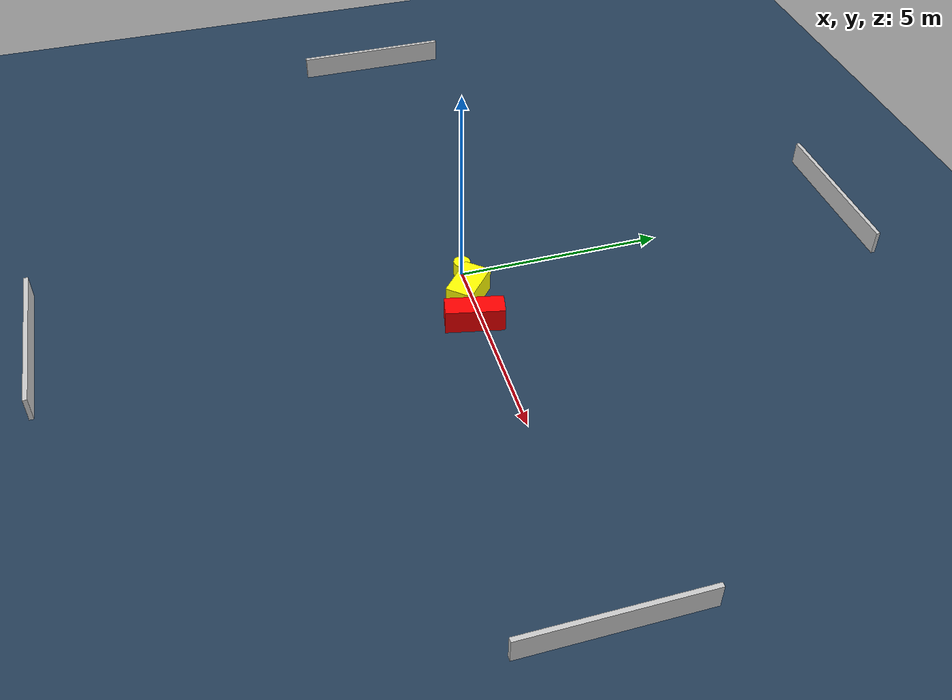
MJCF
<?xml version="1.0" ?>
<mujoco model="generated_environment">
  <option timestep="0.01" integrator="RK4" cone="elliptic"/>
  <default>
    <geom density="1"/>
  </default>
  <asset>
    <texture builtin="gradient" height="3072" name="skybox" rgb1="0.3 0.5 0.7" rgb2="0 0 0" type="skybox" width="512"/>
    <texture builtin="checker" height="300" name="groundplane" rgb1="0.2 0.3 0.4" rgb2="0.1 0.2 0.3" type="2d" width="300"/>
    <material name="groundplane" reflectance="0.2" texrepeat="5 5" texture="groundplane"/>
  </asset>
  <worldbody>
    <light dir="0 0 -1" directional="true" pos="0 0 1.5"/>
    <geom condim="3" friction="0.5 0.005 0.001" material="groundplane" name="floor" pos="0 0 0" size="0 0 0.05" type="plane"/>
    <body name="walls">
      <geom name="wall_1" condim="4" pos="-10.0 0.0 0.3" rgba="0.800000011920929 0.800000011920929 0.800000011920929 1.0" size="0.05 2.0 0.3" type="box"/>
      <geom name="wall_2" condim="4" pos="10.0 0.0 0.3" rgba="0.800000011920929 0.800000011920929 0.800000011920929 1.0" size="0.05 2.0 0.3" type="box"/>
      <geom name="wall_3" condim="4" pos="0.0 -10.0 0.3" rgba="0.800000011920929 0.800000011920929 0.800000011920929 1.0" size="2.0 0.05 0.3" type="box"/>
      <geom name="wall_4" condim="4" pos="0.0 10.0 0.3" rgba="0.800000011920929 0.800000011920929 0.800000011920929 1.0" size="2.0 0.05 0.3" type="box"/>
    </body>
    <body name="robot">
      <joint name="joint_x" type="slide" pos="0 0 0" axis="1 0 0"/>
      <joint name="joint_y" type="slide" pos="0 0 0" axis="0 1 0"/>
      <geom name="robot" type="cylinder" pos="0.0 0.0 0.2" size="0.2 0.2 0.0" mass="5.0" friction="1.0 0.005 0.0001" condim="4" rgba="1.0 1.0 0.0 1.0"/>
    </body>
    <body name="obstacle_1_movable">
      <geom name="obstacle_1_movable" condim="4" pos="0.8651214005228481 -0.08930287698612746 0.3" euler="0 0 49.1488835925787" friction="0.0 0.005 0.001" rgba="1.0 1.0 0.0 1.0" size="0.327301860617891 0.5373013939467061 0.3" type="box" mass="0.1"/>
      <joint type="free"/>
    </body>
    <body name="obstacle_2_static">
      <geom name="obstacle_2_static" condim="4" pos="1.751789329008125 -0.1951462270822273 0.3" euler="0 0 348.3266407918257" friction="0.0 0.005 0.001" rgba="1.0 0.0 0.0 1.0" size="0.25684573653344417 0.6871057080447158 0.3" type="box"/>
    </body>
  </worldbody>
  <actuator>
    <motor name="actuator_x" joint="joint_x" gear="1" ctrlrange="-1 1"/>
    <motor name="actuator_y" joint="joint_y" gear="1" ctrlrange="-1 1"/>
  </actuator>
</mujoco>
